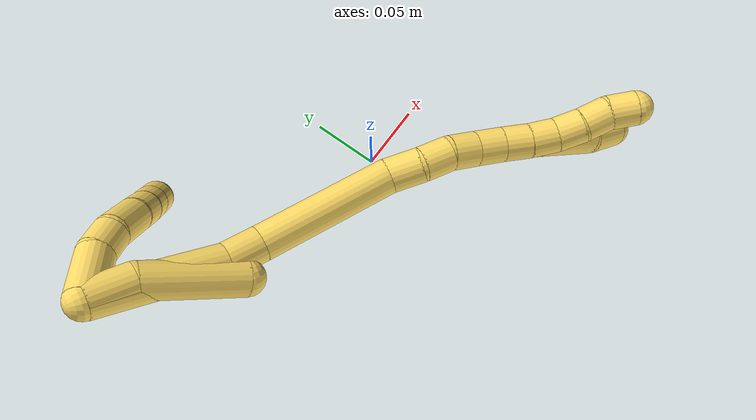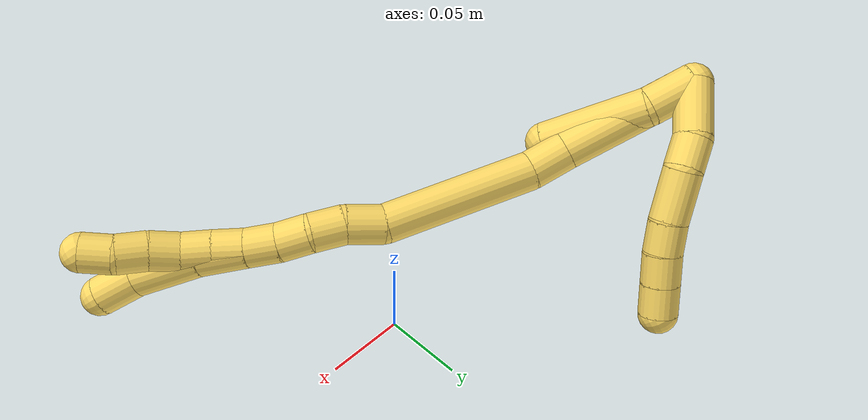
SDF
<sdf version="1.7">
 <world name="default">
  <model name="5">
   <static>0</static>
   <link name="5">
    <collision name="collision-cylinder-e_1_2_8">
     <pose>-0.013715 -0.006962 0.009642 0.625366 -0.856426 -0.293022</pose>
     <geometry><cylinder><radius>0.0125</radius><length>0.036307</length></cylinder></geometry>
     <surface>
      <friction><ode><mu>1.16</mu><mu2>1.16</mu2><slip1>0</slip1><slip2>0</slip2></ode></friction>
      <contact><ode><kp>1e+06</kp><kd>1</kd><max_vel>0</max_vel><min_depth>0.001</min_depth></ode></contact>
     </surface>
    </collision>
    <visual name="visual-cylinder-e_1_2_8">
     <pose>-0.013715 -0.006962 0.009642 0.625366 -0.856426 -0.293022</pose>
     <geometry><cylinder><radius>0.0125</radius><length>0.036307</length></cylinder></geometry>
     <material><ambient>1 0.858824 0.4 1</ambient></material>
    </visual>
    <collision name="collision-cylinder-e_2_8_9">
     <pose>-0.033955 -0.016252 0.02703 0.29196 -0.678902 -0.103742</pose>
     <geometry><cylinder><radius>0.0125</radius><length>0.020784</length></cylinder></geometry>
     <surface>
      <friction><ode><mu>1.16</mu><mu2>1.16</mu2><slip1>0</slip1><slip2>0</slip2></ode></friction>
      <contact><ode><kp>1e+06</kp><kd>1</kd><max_vel>0</max_vel><min_depth>0.001</min_depth></ode></contact>
     </surface>
    </collision>
    <visual name="visual-cylinder-e_2_8_9">
     <pose>-0.033955 -0.016252 0.02703 0.29196 -0.678902 -0.103742</pose>
     <geometry><cylinder><radius>0.0125</radius><length>0.020784</length></cylinder></geometry>
     <material><ambient>1 0.858824 0.4 1</ambient></material>
    </visual>
    <collision name="collision-cylinder-e_3_9_10">
     <pose>-0.051775 -0.017441 0.046449 -0.097256 -0.766521 0.03924</pose>
     <geometry><cylinder><radius>0.0125</radius><length>0.032566</length></cylinder></geometry>
     <surface>
      <friction><ode><mu>1.16</mu><mu2>1.16</mu2><slip1>0</slip1><slip2>0</slip2></ode></friction>
      <contact><ode><kp>1e+06</kp><kd>1</kd><max_vel>0</max_vel><min_depth>0.001</min_depth></ode></contact>
     </surface>
    </collision>
    <visual name="visual-cylinder-e_3_9_10">
     <pose>-0.051775 -0.017441 0.046449 -0.097256 -0.766521 0.03924</pose>
     <geometry><cylinder><radius>0.0125</radius><length>0.032566</length></cylinder></geometry>
     <material><ambient>1 0.858824 0.4 1</ambient></material>
    </visual>
    <collision name="collision-cylinder-e_4_10_11">
     <pose>-0.07072 -0.014772 0.064454 -0.237053 -0.865473 0.109909</pose>
     <geometry><cylinder><radius>0.0125</radius><length>0.020095</length></cylinder></geometry>
     <surface>
      <friction><ode><mu>1.16</mu><mu2>1.16</mu2><slip1>0</slip1><slip2>0</slip2></ode></friction>
      <contact><ode><kp>1e+06</kp><kd>1</kd><max_vel>0</max_vel><min_depth>0.001</min_depth></ode></contact>
     </surface>
    </collision>
    <visual name="visual-cylinder-e_4_10_11">
     <pose>-0.07072 -0.014772 0.064454 -0.237053 -0.865473 0.109909</pose>
     <geometry><cylinder><radius>0.0125</radius><length>0.020095</length></cylinder></geometry>
     <material><ambient>1 0.858824 0.4 1</ambient></material>
    </visual>
    <collision name="collision-cylinder-e_5_11_12">
     <pose>-0.086609 -0.011352 0.076227 -0.334421 -0.960587 0.175419</pose>
     <geometry><cylinder><radius>0.0125</radius><length>0.020108</length></cylinder></geometry>
     <surface>
      <friction><ode><mu>1.16</mu><mu2>1.16</mu2><slip1>0</slip1><slip2>0</slip2></ode></friction>
      <contact><ode><kp>1e+06</kp><kd>1</kd><max_vel>0</max_vel><min_depth>0.001</min_depth></ode></contact>
     </surface>
    </collision>
    <visual name="visual-cylinder-e_5_11_12">
     <pose>-0.086609 -0.011352 0.076227 -0.334421 -0.960587 0.175419</pose>
     <geometry><cylinder><radius>0.0125</radius><length>0.020108</length></cylinder></geometry>
     <material><ambient>1 0.858824 0.4 1</ambient></material>
    </visual>
    <collision name="collision-cylinder-e_6_12_6">
     <pose>-0.103099 -0.00754 0.087117 -0.338986 -0.959995 0.177719</pose>
     <geometry><cylinder><radius>0.0125</radius><length>0.020141</length></cylinder></geometry>
     <surface>
      <friction><ode><mu>1.16</mu><mu2>1.16</mu2><slip1>0</slip1><slip2>0</slip2></ode></friction>
      <contact><ode><kp>1e+06</kp><kd>1</kd><max_vel>0</max_vel><min_depth>0.001</min_depth></ode></contact>
     </surface>
    </collision>
    <visual name="visual-cylinder-e_6_12_6">
     <pose>-0.103099 -0.00754 0.087117 -0.338986 -0.959995 0.177719</pose>
     <geometry><cylinder><radius>0.0125</radius><length>0.020141</length></cylinder></geometry>
     <material><ambient>1 0.858824 0.4 1</ambient></material>
    </visual>
    <collision name="collision-cylinder-e_1_2_13">
     <pose>0.000946 -0.000943 0.015404 0.061111 0.061199 0.001871</pose>
     <geometry><cylinder><radius>0.0125</radius><length>0.030924</length></cylinder></geometry>
     <surface>
      <friction><ode><mu>1.16</mu><mu2>1.16</mu2><slip1>0</slip1><slip2>0</slip2></ode></friction>
      <contact><ode><kp>1e+06</kp><kd>1</kd><max_vel>0</max_vel><min_depth>0.001</min_depth></ode></contact>
     </surface>
    </collision>
    <visual name="visual-cylinder-e_1_2_13">
     <pose>0.000946 -0.000943 0.015404 0.061111 0.061199 0.001871</pose>
     <geometry><cylinder><radius>0.0125</radius><length>0.030924</length></cylinder></geometry>
     <material><ambient>1 0.858824 0.4 1</ambient></material>
    </visual>
    <collision name="collision-cylinder-e_2_13_5">
     <pose>0.00903 0.006671 0.0635 -0.255985 0.208177 -0.026887</pose>
     <geometry><cylinder><radius>0.0125</radius><length>0.069076</length></cylinder></geometry>
     <surface>
      <friction><ode><mu>1.16</mu><mu2>1.16</mu2><slip1>0</slip1><slip2>0</slip2></ode></friction>
      <contact><ode><kp>1e+06</kp><kd>1</kd><max_vel>0</max_vel><min_depth>0.001</min_depth></ode></contact>
     </surface>
    </collision>
    <visual name="visual-cylinder-e_2_13_5">
     <pose>0.00903 0.006671 0.0635 -0.255985 0.208177 -0.026887</pose>
     <geometry><cylinder><radius>0.0125</radius><length>0.069076</length></cylinder></geometry>
     <material><ambient>1 0.858824 0.4 1</ambient></material>
    </visual>
    <collision name="collision-cylinder-e_1_2_14">
     <pose>0.002611 0.002232 0.043997 -0.050691 0.059194 -0.001501</pose>
     <geometry><cylinder><radius>0.0125</radius><length>0.088262</length></cylinder></geometry>
     <surface>
      <friction><ode><mu>1.16</mu><mu2>1.16</mu2><slip1>0</slip1><slip2>0</slip2></ode></friction>
      <contact><ode><kp>1e+06</kp><kd>1</kd><max_vel>0</max_vel><min_depth>0.001</min_depth></ode></contact>
     </surface>
    </collision>
    <visual name="visual-cylinder-e_1_2_14">
     <pose>0.002611 0.002232 0.043997 -0.050691 0.059194 -0.001501</pose>
     <geometry><cylinder><radius>0.0125</radius><length>0.088262</length></cylinder></geometry>
     <material><ambient>1 0.858824 0.4 1</ambient></material>
    </visual>
    <collision name="collision-cylinder-e_2_14_15">
     <pose>0.005735 0.002328 0.10091 0.163881 0.039222 0.003222</pose>
     <geometry><cylinder><radius>0.0125</radius><length>0.026203</length></cylinder></geometry>
     <surface>
      <friction><ode><mu>1.16</mu><mu2>1.16</mu2><slip1>0</slip1><slip2>0</slip2></ode></friction>
      <contact><ode><kp>1e+06</kp><kd>1</kd><max_vel>0</max_vel><min_depth>0.001</min_depth></ode></contact>
     </surface>
    </collision>
    <visual name="visual-cylinder-e_2_14_15">
     <pose>0.005735 0.002328 0.10091 0.163881 0.039222 0.003222</pose>
     <geometry><cylinder><radius>0.0125</radius><length>0.026203</length></cylinder></geometry>
     <material><ambient>1 0.858824 0.4 1</ambient></material>
    </visual>
    <collision name="collision-cylinder-e_3_15_16">
     <pose>0.016451 -0.013323 0.160287 0.283086 0.207803 0.029716</pose>
     <geometry><cylinder><radius>0.0125</radius><length>0.098901</length></cylinder></geometry>
     <surface>
      <friction><ode><mu>1.16</mu><mu2>1.16</mu2><slip1>0</slip1><slip2>0</slip2></ode></friction>
      <contact><ode><kp>1e+06</kp><kd>1</kd><max_vel>0</max_vel><min_depth>0.001</min_depth></ode></contact>
     </surface>
    </collision>
    <visual name="visual-cylinder-e_3_15_16">
     <pose>0.016451 -0.013323 0.160287 0.283086 0.207803 0.029716</pose>
     <geometry><cylinder><radius>0.0125</radius><length>0.098901</length></cylinder></geometry>
     <material><ambient>1 0.858824 0.4 1</ambient></material>
    </visual>
    <collision name="collision-cylinder-e_4_16_17">
     <pose>0.03301 -0.029923 0.216681 0.301095 0.548602 0.085321</pose>
     <geometry><cylinder><radius>0.0125</radius><length>0.024378</length></cylinder></geometry>
     <surface>
      <friction><ode><mu>1.16</mu><mu2>1.16</mu2><slip1>0</slip1><slip2>0</slip2></ode></friction>
      <contact><ode><kp>1e+06</kp><kd>1</kd><max_vel>0</max_vel><min_depth>0.001</min_depth></ode></contact>
     </surface>
    </collision>
    <visual name="visual-cylinder-e_4_16_17">
     <pose>0.03301 -0.029923 0.216681 0.301095 0.548602 0.085321</pose>
     <geometry><cylinder><radius>0.0125</radius><length>0.024378</length></cylinder></geometry>
     <material><ambient>1 0.858824 0.4 1</ambient></material>
    </visual>
    <collision name="collision-cylinder-e_5_17_18">
     <pose>0.042636 -0.03532 0.236519 0.229399 0.310928 0.036108</pose>
     <geometry><cylinder><radius>0.0125</radius><length>0.02137</length></cylinder></geometry>
     <surface>
      <friction><ode><mu>1.16</mu><mu2>1.16</mu2><slip1>0</slip1><slip2>0</slip2></ode></friction>
      <contact><ode><kp>1e+06</kp><kd>1</kd><max_vel>0</max_vel><min_depth>0.001</min_depth></ode></contact>
     </surface>
    </collision>
    <visual name="visual-cylinder-e_5_17_18">
     <pose>0.042636 -0.03532 0.236519 0.229399 0.310928 0.036108</pose>
     <geometry><cylinder><radius>0.0125</radius><length>0.02137</length></cylinder></geometry>
     <material><ambient>1 0.858824 0.4 1</ambient></material>
    </visual>
    <collision name="collision-cylinder-e_6_18_19">
     <pose>0.048467 -0.037367 0.256193 -0.027287 0.256468 -0.003519</pose>
     <geometry><cylinder><radius>0.0125</radius><length>0.020202</length></cylinder></geometry>
     <surface>
      <friction><ode><mu>1.16</mu><mu2>1.16</mu2><slip1>0</slip1><slip2>0</slip2></ode></friction>
      <contact><ode><kp>1e+06</kp><kd>1</kd><max_vel>0</max_vel><min_depth>0.001</min_depth></ode></contact>
     </surface>
    </collision>
    <visual name="visual-cylinder-e_6_18_19">
     <pose>0.048467 -0.037367 0.256193 -0.027287 0.256468 -0.003519</pose>
     <geometry><cylinder><radius>0.0125</radius><length>0.020202</length></cylinder></geometry>
     <material><ambient>1 0.858824 0.4 1</ambient></material>
    </visual>
    <collision name="collision-cylinder-e_7_19_1">
     <pose>0.054841 -0.037175 0.275573 0.007722 0.377517 0.001475</pose>
     <geometry><cylinder><radius>0.0125</radius><length>0.020683</length></cylinder></geometry>
     <surface>
      <friction><ode><mu>1.16</mu><mu2>1.16</mu2><slip1>0</slip1><slip2>0</slip2></ode></friction>
      <contact><ode><kp>1e+06</kp><kd>1</kd><max_vel>0</max_vel><min_depth>0.001</min_depth></ode></contact>
     </surface>
    </collision>
    <visual name="visual-cylinder-e_7_19_1">
     <pose>0.054841 -0.037175 0.275573 0.007722 0.377517 0.001475</pose>
     <geometry><cylinder><radius>0.0125</radius><length>0.020683</length></cylinder></geometry>
     <material><ambient>1 0.858824 0.4 1</ambient></material>
    </visual>
    <collision name="collision-cylinder-e_1_1_20">
     <pose>0.064108 -0.036951 0.29951 -0.020773 0.363765 -0.003821</pose>
     <geometry><cylinder><radius>0.0125</radius><length>0.030662</length></cylinder></geometry>
     <surface>
      <friction><ode><mu>1.16</mu><mu2>1.16</mu2><slip1>0</slip1><slip2>0</slip2></ode></friction>
      <contact><ode><kp>1e+06</kp><kd>1</kd><max_vel>0</max_vel><min_depth>0.001</min_depth></ode></contact>
     </surface>
    </collision>
    <visual name="visual-cylinder-e_1_1_20">
     <pose>0.064108 -0.036951 0.29951 -0.020773 0.363765 -0.003821</pose>
     <geometry><cylinder><radius>0.0125</radius><length>0.030662</length></cylinder></geometry>
     <material><ambient>1 0.858824 0.4 1</ambient></material>
    </visual>
    <collision name="collision-cylinder-e_2_20_21">
     <pose>0.074482 -0.033691 0.33482 -0.140254 0.228098 -0.016092</pose>
     <geometry><cylinder><radius>0.0125</radius><length>0.043512</length></cylinder></geometry>
     <surface>
      <friction><ode><mu>1.16</mu><mu2>1.16</mu2><slip1>0</slip1><slip2>0</slip2></ode></friction>
      <contact><ode><kp>1e+06</kp><kd>1</kd><max_vel>0</max_vel><min_depth>0.001</min_depth></ode></contact>
     </surface>
    </collision>
    <visual name="visual-cylinder-e_2_20_21">
     <pose>0.074482 -0.033691 0.33482 -0.140254 0.228098 -0.016092</pose>
     <geometry><cylinder><radius>0.0125</radius><length>0.043512</length></cylinder></geometry>
     <material><ambient>1 0.858824 0.4 1</ambient></material>
    </visual>
    <collision name="collision-cylinder-e_3_21_4">
     <pose>0.080229 -0.030598 0.36869 -0.010103 0.064114 -0.000324</pose>
     <geometry><cylinder><radius>0.0125</radius><length>0.025826</length></cylinder></geometry>
     <surface>
      <friction><ode><mu>1.16</mu><mu2>1.16</mu2><slip1>0</slip1><slip2>0</slip2></ode></friction>
      <contact><ode><kp>1e+06</kp><kd>1</kd><max_vel>0</max_vel><min_depth>0.001</min_depth></ode></contact>
     </surface>
    </collision>
    <visual name="visual-cylinder-e_3_21_4">
     <pose>0.080229 -0.030598 0.36869 -0.010103 0.064114 -0.000324</pose>
     <geometry><cylinder><radius>0.0125</radius><length>0.025826</length></cylinder></geometry>
     <material><ambient>1 0.858824 0.4 1</ambient></material>
    </visual>
    <collision name="collision-cylinder-e_1_1_22">
     <pose>0.063478 -0.0375 0.293941 0.028717 0.503521 0.007387</pose>
     <geometry><cylinder><radius>0.0125</radius><length>0.02</length></cylinder></geometry>
     <surface>
      <friction><ode><mu>1.16</mu><mu2>1.16</mu2><slip1>0</slip1><slip2>0</slip2></ode></friction>
      <contact><ode><kp>1e+06</kp><kd>1</kd><max_vel>0</max_vel><min_depth>0.001</min_depth></ode></contact>
     </surface>
    </collision>
    <visual name="visual-cylinder-e_1_1_22">
     <pose>0.063478 -0.0375 0.293941 0.028717 0.503521 0.007387</pose>
     <geometry><cylinder><radius>0.0125</radius><length>0.02</length></cylinder></geometry>
     <material><ambient>1 0.858824 0.4 1</ambient></material>
    </visual>
    <collision name="collision-cylinder-e_2_22_23">
     <pose>0.072902 -0.038792 0.311515 0.117388 0.477778 0.02862</pose>
     <geometry><cylinder><radius>0.0125</radius><length>0.02</length></cylinder></geometry>
     <surface>
      <friction><ode><mu>1.16</mu><mu2>1.16</mu2><slip1>0</slip1><slip2>0</slip2></ode></friction>
      <contact><ode><kp>1e+06</kp><kd>1</kd><max_vel>0</max_vel><min_depth>0.001</min_depth></ode></contact>
     </surface>
    </collision>
    <visual name="visual-cylinder-e_2_22_23">
     <pose>0.072902 -0.038792 0.311515 0.117388 0.477778 0.02862</pose>
     <geometry><cylinder><radius>0.0125</radius><length>0.02</length></cylinder></geometry>
     <material><ambient>1 0.858824 0.4 1</ambient></material>
    </visual>
    <collision name="collision-cylinder-e_3_23_24">
     <pose>0.083106 -0.04286 0.328042 0.374393 0.595096 0.116038</pose>
     <geometry><cylinder><radius>0.0125</radius><length>0.02</length></cylinder></geometry>
     <surface>
      <friction><ode><mu>1.16</mu><mu2>1.16</mu2><slip1>0</slip1><slip2>0</slip2></ode></friction>
      <contact><ode><kp>1e+06</kp><kd>1</kd><max_vel>0</max_vel><min_depth>0.001</min_depth></ode></contact>
     </surface>
    </collision>
    <visual name="visual-cylinder-e_3_23_24">
     <pose>0.083106 -0.04286 0.328042 0.374393 0.595096 0.116038</pose>
     <geometry><cylinder><radius>0.0125</radius><length>0.02</length></cylinder></geometry>
     <material><ambient>1 0.858824 0.4 1</ambient></material>
    </visual>
    <collision name="collision-cylinder-e_4_24_25">
     <pose>0.092967 -0.04927 0.344143 0.382968 0.439519 0.086549</pose>
     <geometry><cylinder><radius>0.0125</radius><length>0.02</length></cylinder></geometry>
     <surface>
      <friction><ode><mu>1.16</mu><mu2>1.16</mu2><slip1>0</slip1><slip2>0</slip2></ode></friction>
      <contact><ode><kp>1e+06</kp><kd>1</kd><max_vel>0</max_vel><min_depth>0.001</min_depth></ode></contact>
     </surface>
    </collision>
    <visual name="visual-cylinder-e_4_24_25">
     <pose>0.092967 -0.04927 0.344143 0.382968 0.439519 0.086549</pose>
     <geometry><cylinder><radius>0.0125</radius><length>0.02</length></cylinder></geometry>
     <material><ambient>1 0.858824 0.4 1</ambient></material>
    </visual>
    <collision name="collision-cylinder-e_5_25_3">
     <pose>0.103065 -0.053845 0.360564 0.147537 0.624064 0.047668</pose>
     <geometry><cylinder><radius>0.0125</radius><length>0.02</length></cylinder></geometry>
     <surface>
      <friction><ode><mu>1.16</mu><mu2>1.16</mu2><slip1>0</slip1><slip2>0</slip2></ode></friction>
      <contact><ode><kp>1e+06</kp><kd>1</kd><max_vel>0</max_vel><min_depth>0.001</min_depth></ode></contact>
     </surface>
    </collision>
    <visual name="visual-cylinder-e_5_25_3">
     <pose>0.103065 -0.053845 0.360564 0.147537 0.624064 0.047668</pose>
     <geometry><cylinder><radius>0.0125</radius><length>0.02</length></cylinder></geometry>
     <material><ambient>1 0.858824 0.4 1</ambient></material>
    </visual>
    <collision name="collision-sphere-3">
     <pose>0.108908 -0.055038 0.368591 0 -0 0</pose>
     <geometry><sphere><radius>0.0125</radius></sphere></geometry>
     <surface>
      <friction><ode><mu>1.16</mu><mu2>1.16</mu2><slip1>0</slip1><slip2>0</slip2></ode></friction>
      <contact><ode><kp>1e+06</kp><kd>1</kd><max_vel>0</max_vel><min_depth>0.001</min_depth></ode></contact>
     </surface>
    </collision>
    <visual name="visual-sphere-3">
     <pose>0.108908 -0.055038 0.368591 0 -0 0</pose>
     <geometry><sphere><radius>0.0125</radius></sphere></geometry>
     <material><ambient>1 0.858824 0.4 1</ambient></material>
    </visual>
    <collision name="collision-sphere-25">
     <pose>0.097222 -0.052652 0.352537 0 -0 0</pose>
     <geometry><sphere><radius>0.0125</radius></sphere></geometry>
     <surface>
      <friction><ode><mu>1.16</mu><mu2>1.16</mu2><slip1>0</slip1><slip2>0</slip2></ode></friction>
      <contact><ode><kp>1e+06</kp><kd>1</kd><max_vel>0</max_vel><min_depth>0.001</min_depth></ode></contact>
     </surface>
    </collision>
    <visual name="visual-sphere-25">
     <pose>0.097222 -0.052652 0.352537 0 -0 0</pose>
     <geometry><sphere><radius>0.0125</radius></sphere></geometry>
     <material><ambient>1 0.858824 0.4 1</ambient></material>
    </visual>
    <collision name="collision-sphere-24">
     <pose>0.088712 -0.045889 0.335749 0 -0 0</pose>
     <geometry><sphere><radius>0.0125</radius></sphere></geometry>
     <surface>
      <friction><ode><mu>1.16</mu><mu2>1.16</mu2><slip1>0</slip1><slip2>0</slip2></ode></friction>
      <contact><ode><kp>1e+06</kp><kd>1</kd><max_vel>0</max_vel><min_depth>0.001</min_depth></ode></contact>
     </surface>
    </collision>
    <visual name="visual-sphere-24">
     <pose>0.088712 -0.045889 0.335749 0 -0 0</pose>
     <geometry><sphere><radius>0.0125</radius></sphere></geometry>
     <material><ambient>1 0.858824 0.4 1</ambient></material>
    </visual>
    <collision name="collision-sphere-23">
     <pose>0.0775 -0.039832 0.320335 0 -0 0</pose>
     <geometry><sphere><radius>0.0125</radius></sphere></geometry>
     <surface>
      <friction><ode><mu>1.16</mu><mu2>1.16</mu2><slip1>0</slip1><slip2>0</slip2></ode></friction>
      <contact><ode><kp>1e+06</kp><kd>1</kd><max_vel>0</max_vel><min_depth>0.001</min_depth></ode></contact>
     </surface>
    </collision>
    <visual name="visual-sphere-23">
     <pose>0.0775 -0.039832 0.320335 0 -0 0</pose>
     <geometry><sphere><radius>0.0125</radius></sphere></geometry>
     <material><ambient>1 0.858824 0.4 1</ambient></material>
    </visual>
    <collision name="collision-sphere-22">
     <pose>0.068304 -0.037752 0.302696 0 -0 0</pose>
     <geometry><sphere><radius>0.0125</radius></sphere></geometry>
     <surface>
      <friction><ode><mu>1.16</mu><mu2>1.16</mu2><slip1>0</slip1><slip2>0</slip2></ode></friction>
      <contact><ode><kp>1e+06</kp><kd>1</kd><max_vel>0</max_vel><min_depth>0.001</min_depth></ode></contact>
     </surface>
    </collision>
    <visual name="visual-sphere-22">
     <pose>0.068304 -0.037752 0.302696 0 -0 0</pose>
     <geometry><sphere><radius>0.0125</radius></sphere></geometry>
     <material><ambient>1 0.858824 0.4 1</ambient></material>
    </visual>
    <collision name="collision-sphere-4">
     <pose>0.081057 -0.030468 0.381576 0 -0 0</pose>
     <geometry><sphere><radius>0.0125</radius></sphere></geometry>
     <surface>
      <friction><ode><mu>1.16</mu><mu2>1.16</mu2><slip1>0</slip1><slip2>0</slip2></ode></friction>
      <contact><ode><kp>1e+06</kp><kd>1</kd><max_vel>0</max_vel><min_depth>0.001</min_depth></ode></contact>
     </surface>
    </collision>
    <visual name="visual-sphere-4">
     <pose>0.081057 -0.030468 0.381576 0 -0 0</pose>
     <geometry><sphere><radius>0.0125</radius></sphere></geometry>
     <material><ambient>1 0.858824 0.4 1</ambient></material>
    </visual>
    <collision name="collision-sphere-21">
     <pose>0.079402 -0.030728 0.355804 0 -0 0</pose>
     <geometry><sphere><radius>0.0125</radius></sphere></geometry>
     <surface>
      <friction><ode><mu>1.16</mu><mu2>1.16</mu2><slip1>0</slip1><slip2>0</slip2></ode></friction>
      <contact><ode><kp>1e+06</kp><kd>1</kd><max_vel>0</max_vel><min_depth>0.001</min_depth></ode></contact>
     </surface>
    </collision>
    <visual name="visual-sphere-21">
     <pose>0.079402 -0.030728 0.355804 0 -0 0</pose>
     <geometry><sphere><radius>0.0125</radius></sphere></geometry>
     <material><ambient>1 0.858824 0.4 1</ambient></material>
    </visual>
    <collision name="collision-sphere-20">
     <pose>0.069563 -0.036654 0.313835 0 -0 0</pose>
     <geometry><sphere><radius>0.0125</radius></sphere></geometry>
     <surface>
      <friction><ode><mu>1.16</mu><mu2>1.16</mu2><slip1>0</slip1><slip2>0</slip2></ode></friction>
      <contact><ode><kp>1e+06</kp><kd>1</kd><max_vel>0</max_vel><min_depth>0.001</min_depth></ode></contact>
     </surface>
    </collision>
    <visual name="visual-sphere-20">
     <pose>0.069563 -0.036654 0.313835 0 -0 0</pose>
     <geometry><sphere><radius>0.0125</radius></sphere></geometry>
     <material><ambient>1 0.858824 0.4 1</ambient></material>
    </visual>
    <collision name="collision-sphere-12">
     <pose>-0.094849 -0.009461 0.08167 0 -0 0</pose>
     <geometry><sphere><radius>0.0125</radius></sphere></geometry>
     <surface>
      <friction><ode><mu>1.16</mu><mu2>1.16</mu2><slip1>0</slip1><slip2>0</slip2></ode></friction>
      <contact><ode><kp>1e+06</kp><kd>1</kd><max_vel>0</max_vel><min_depth>0.001</min_depth></ode></contact>
     </surface>
    </collision>
    <visual name="visual-sphere-12">
     <pose>-0.094849 -0.009461 0.08167 0 -0 0</pose>
     <geometry><sphere><radius>0.0125</radius></sphere></geometry>
     <material><ambient>1 0.858824 0.4 1</ambient></material>
    </visual>
    <collision name="collision-sphere-11">
     <pose>-0.07837 -0.013243 0.070785 0 -0 0</pose>
     <geometry><sphere><radius>0.0125</radius></sphere></geometry>
     <surface>
      <friction><ode><mu>1.16</mu><mu2>1.16</mu2><slip1>0</slip1><slip2>0</slip2></ode></friction>
      <contact><ode><kp>1e+06</kp><kd>1</kd><max_vel>0</max_vel><min_depth>0.001</min_depth></ode></contact>
     </surface>
    </collision>
    <visual name="visual-sphere-11">
     <pose>-0.07837 -0.013243 0.070785 0 -0 0</pose>
     <geometry><sphere><radius>0.0125</radius></sphere></geometry>
     <material><ambient>1 0.858824 0.4 1</ambient></material>
    </visual>
    <collision name="collision-sphere-10">
     <pose>-0.06307 -0.016302 0.058122 0 -0 0</pose>
     <geometry><sphere><radius>0.0125</radius></sphere></geometry>
     <surface>
      <friction><ode><mu>1.16</mu><mu2>1.16</mu2><slip1>0</slip1><slip2>0</slip2></ode></friction>
      <contact><ode><kp>1e+06</kp><kd>1</kd><max_vel>0</max_vel><min_depth>0.001</min_depth></ode></contact>
     </surface>
    </collision>
    <visual name="visual-sphere-10">
     <pose>-0.06307 -0.016302 0.058122 0 -0 0</pose>
     <geometry><sphere><radius>0.0125</radius></sphere></geometry>
     <material><ambient>1 0.858824 0.4 1</ambient></material>
    </visual>
    <collision name="collision-sphere-9">
     <pose>-0.040481 -0.01858 0.034775 0 -0 0</pose>
     <geometry><sphere><radius>0.0125</radius></sphere></geometry>
     <surface>
      <friction><ode><mu>1.16</mu><mu2>1.16</mu2><slip1>0</slip1><slip2>0</slip2></ode></friction>
      <contact><ode><kp>1e+06</kp><kd>1</kd><max_vel>0</max_vel><min_depth>0.001</min_depth></ode></contact>
     </surface>
    </collision>
    <visual name="visual-sphere-9">
     <pose>-0.040481 -0.01858 0.034775 0 -0 0</pose>
     <geometry><sphere><radius>0.0125</radius></sphere></geometry>
     <material><ambient>1 0.858824 0.4 1</ambient></material>
    </visual>
    <collision name="collision-sphere-2">
     <geometry><sphere><radius>0.0125</radius></sphere></geometry>
     <surface>
      <friction><ode><mu>1.16</mu><mu2>1.16</mu2><slip1>0</slip1><slip2>0</slip2></ode></friction>
      <contact><ode><kp>1e+06</kp><kd>1</kd><max_vel>0</max_vel><min_depth>0.001</min_depth></ode></contact>
     </surface>
    </collision>
    <visual name="visual-sphere-2">
     <geometry><sphere><radius>0.0125</radius></sphere></geometry>
     <material><ambient>1 0.858824 0.4 1</ambient></material>
    </visual>
    <collision name="collision-sphere-19">
     <pose>0.051029 -0.0371 0.26596 0 -0 0</pose>
     <geometry><sphere><radius>0.0125</radius></sphere></geometry>
     <surface>
      <friction><ode><mu>1.16</mu><mu2>1.16</mu2><slip1>0</slip1><slip2>0</slip2></ode></friction>
      <contact><ode><kp>1e+06</kp><kd>1</kd><max_vel>0</max_vel><min_depth>0.001</min_depth></ode></contact>
     </surface>
    </collision>
    <visual name="visual-sphere-19">
     <pose>0.051029 -0.0371 0.26596 0 -0 0</pose>
     <geometry><sphere><radius>0.0125</radius></sphere></geometry>
     <material><ambient>1 0.858824 0.4 1</ambient></material>
    </visual>
    <collision name="collision-sphere-8">
     <pose>-0.02743 -0.013924 0.019284 0 -0 0</pose>
     <geometry><sphere><radius>0.0125</radius></sphere></geometry>
     <surface>
      <friction><ode><mu>1.16</mu><mu2>1.16</mu2><slip1>0</slip1><slip2>0</slip2></ode></friction>
      <contact><ode><kp>1e+06</kp><kd>1</kd><max_vel>0</max_vel><min_depth>0.001</min_depth></ode></contact>
     </surface>
    </collision>
    <visual name="visual-sphere-8">
     <pose>-0.02743 -0.013924 0.019284 0 -0 0</pose>
     <geometry><sphere><radius>0.0125</radius></sphere></geometry>
     <material><ambient>1 0.858824 0.4 1</ambient></material>
    </visual>
    <collision name="collision-sphere-6">
     <pose>-0.111348 -0.00562 0.092563 0 -0 0</pose>
     <geometry><sphere><radius>0.0125</radius></sphere></geometry>
     <surface>
      <friction><ode><mu>1.16</mu><mu2>1.16</mu2><slip1>0</slip1><slip2>0</slip2></ode></friction>
      <contact><ode><kp>1e+06</kp><kd>1</kd><max_vel>0</max_vel><min_depth>0.001</min_depth></ode></contact>
     </surface>
    </collision>
    <visual name="visual-sphere-6">
     <pose>-0.111348 -0.00562 0.092563 0 -0 0</pose>
     <geometry><sphere><radius>0.0125</radius></sphere></geometry>
     <material><ambient>1 0.858824 0.4 1</ambient></material>
    </visual>
    <collision name="collision-sphere-13">
     <pose>0.001891 -0.001885 0.030808 0 -0 0</pose>
     <geometry><sphere><radius>0.0125</radius></sphere></geometry>
     <surface>
      <friction><ode><mu>1.16</mu><mu2>1.16</mu2><slip1>0</slip1><slip2>0</slip2></ode></friction>
      <contact><ode><kp>1e+06</kp><kd>1</kd><max_vel>0</max_vel><min_depth>0.001</min_depth></ode></contact>
     </surface>
    </collision>
    <visual name="visual-sphere-13">
     <pose>0.001891 -0.001885 0.030808 0 -0 0</pose>
     <geometry><sphere><radius>0.0125</radius></sphere></geometry>
     <material><ambient>1 0.858824 0.4 1</ambient></material>
    </visual>
    <collision name="collision-sphere-5">
     <pose>0.016168 0.015227 0.096191 0 -0 0</pose>
     <geometry><sphere><radius>0.0125</radius></sphere></geometry>
     <surface>
      <friction><ode><mu>1.16</mu><mu2>1.16</mu2><slip1>0</slip1><slip2>0</slip2></ode></friction>
      <contact><ode><kp>1e+06</kp><kd>1</kd><max_vel>0</max_vel><min_depth>0.001</min_depth></ode></contact>
     </surface>
    </collision>
    <visual name="visual-sphere-5">
     <pose>0.016168 0.015227 0.096191 0 -0 0</pose>
     <geometry><sphere><radius>0.0125</radius></sphere></geometry>
     <material><ambient>1 0.858824 0.4 1</ambient></material>
    </visual>
    <collision name="collision-sphere-14">
     <pose>0.005222 0.004464 0.087994 0 -0 0</pose>
     <geometry><sphere><radius>0.0125</radius></sphere></geometry>
     <surface>
      <friction><ode><mu>1.16</mu><mu2>1.16</mu2><slip1>0</slip1><slip2>0</slip2></ode></friction>
      <contact><ode><kp>1e+06</kp><kd>1</kd><max_vel>0</max_vel><min_depth>0.001</min_depth></ode></contact>
     </surface>
    </collision>
    <visual name="visual-sphere-14">
     <pose>0.005222 0.004464 0.087994 0 -0 0</pose>
     <geometry><sphere><radius>0.0125</radius></sphere></geometry>
     <material><ambient>1 0.858824 0.4 1</ambient></material>
    </visual>
    <collision name="collision-sphere-15">
     <pose>0.006249 0.000193 0.113826 0 -0 0</pose>
     <geometry><sphere><radius>0.0125</radius></sphere></geometry>
     <surface>
      <friction><ode><mu>1.16</mu><mu2>1.16</mu2><slip1>0</slip1><slip2>0</slip2></ode></friction>
      <contact><ode><kp>1e+06</kp><kd>1</kd><max_vel>0</max_vel><min_depth>0.001</min_depth></ode></contact>
     </surface>
    </collision>
    <visual name="visual-sphere-15">
     <pose>0.006249 0.000193 0.113826 0 -0 0</pose>
     <geometry><sphere><radius>0.0125</radius></sphere></geometry>
     <material><ambient>1 0.858824 0.4 1</ambient></material>
    </visual>
    <collision name="collision-sphere-16">
     <pose>0.026653 -0.026838 0.206748 0 -0 0</pose>
     <geometry><sphere><radius>0.0125</radius></sphere></geometry>
     <surface>
      <friction><ode><mu>1.16</mu><mu2>1.16</mu2><slip1>0</slip1><slip2>0</slip2></ode></friction>
      <contact><ode><kp>1e+06</kp><kd>1</kd><max_vel>0</max_vel><min_depth>0.001</min_depth></ode></contact>
     </surface>
    </collision>
    <visual name="visual-sphere-16">
     <pose>0.026653 -0.026838 0.206748 0 -0 0</pose>
     <geometry><sphere><radius>0.0125</radius></sphere></geometry>
     <material><ambient>1 0.858824 0.4 1</ambient></material>
    </visual>
    <collision name="collision-sphere-17">
     <pose>0.039367 -0.033007 0.226613 0 -0 0</pose>
     <geometry><sphere><radius>0.0125</radius></sphere></geometry>
     <surface>
      <friction><ode><mu>1.16</mu><mu2>1.16</mu2><slip1>0</slip1><slip2>0</slip2></ode></friction>
      <contact><ode><kp>1e+06</kp><kd>1</kd><max_vel>0</max_vel><min_depth>0.001</min_depth></ode></contact>
     </surface>
    </collision>
    <visual name="visual-sphere-17">
     <pose>0.039367 -0.033007 0.226613 0 -0 0</pose>
     <geometry><sphere><radius>0.0125</radius></sphere></geometry>
     <material><ambient>1 0.858824 0.4 1</ambient></material>
    </visual>
    <collision name="collision-sphere-18">
     <pose>0.045905 -0.037634 0.246426 0 -0 0</pose>
     <geometry><sphere><radius>0.0125</radius></sphere></geometry>
     <surface>
      <friction><ode><mu>1.16</mu><mu2>1.16</mu2><slip1>0</slip1><slip2>0</slip2></ode></friction>
      <contact><ode><kp>1e+06</kp><kd>1</kd><max_vel>0</max_vel><min_depth>0.001</min_depth></ode></contact>
     </surface>
    </collision>
    <visual name="visual-sphere-18">
     <pose>0.045905 -0.037634 0.246426 0 -0 0</pose>
     <geometry><sphere><radius>0.0125</radius></sphere></geometry>
     <material><ambient>1 0.858824 0.4 1</ambient></material>
    </visual>
    <collision name="collision-sphere-1">
     <pose>0.058653 -0.037249 0.285186 0 -0 0</pose>
     <geometry><sphere><radius>0.0125</radius></sphere></geometry>
     <surface>
      <friction><ode><mu>1.16</mu><mu2>1.16</mu2><slip1>0</slip1><slip2>0</slip2></ode></friction>
      <contact><ode><kp>1e+06</kp><kd>1</kd><max_vel>0</max_vel><min_depth>0.001</min_depth></ode></contact>
     </surface>
    </collision>
    <visual name="visual-sphere-1">
     <pose>0.058653 -0.037249 0.285186 0 -0 0</pose>
     <geometry><sphere><radius>0.0125</radius></sphere></geometry>
     <material><ambient>1 0.858824 0.4 1</ambient></material>
    </visual>
    <inertial>
     <pose>0.0186 -0.017741 0.162 0 -0 0</pose>
     <mass>0.75</mass>
     <inertia><ixx>0.00022</ixx><ixy>0</ixy><ixz>0</ixz><iyy>0.000219</iyy><iyz>0</iyz><izz>4.1e-05</izz></inertia>
    </inertial>
   </link>
   <pose>-0.201141 0.058306 0.113854 -2.17596 -0.676157 -1.60308</pose>
  </model>
 </world>
</sdf>
